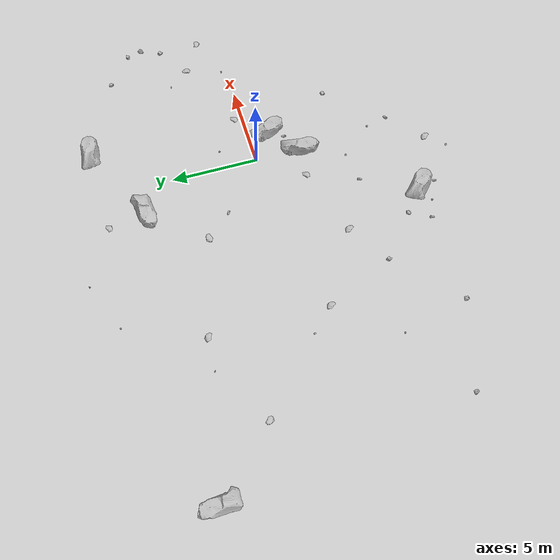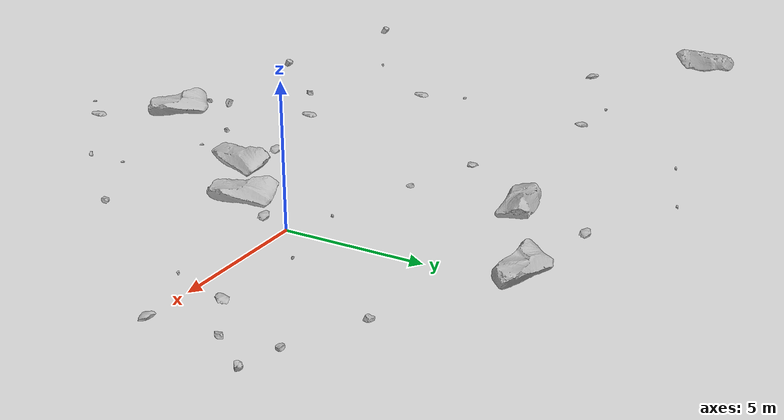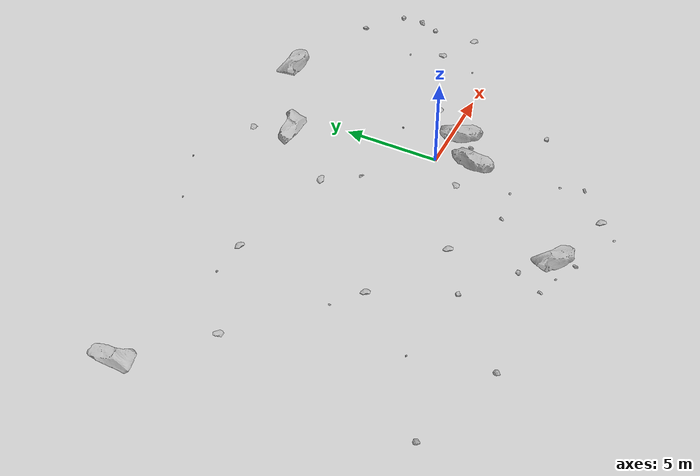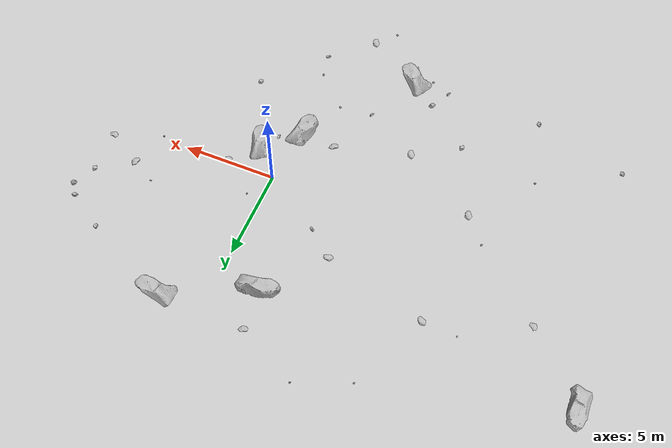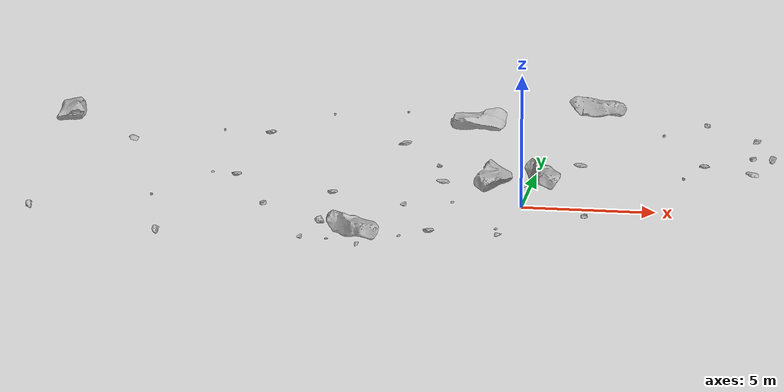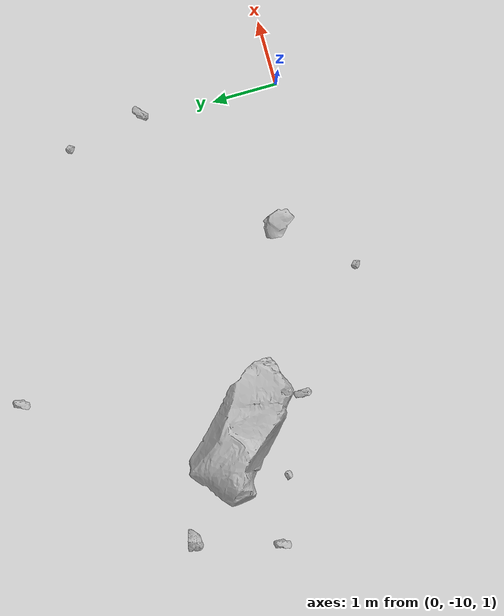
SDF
<sdf version="1.7">
 <world name="marsyard">
  <gravity>0 0 -9.81</gravity>
  <physics name="dart_physics" type="ignored">
   <max_step_size>0.003</max_step_size>
   <real_time_update_rate>333</real_time_update_rate>
   <real_time_factor>1.0</real_time_factor>
  </physics>
  <plugin filename="ignition-gazebo-physics-system" name="ignition::gazebo::systems::Physics"/>
  <plugin filename="ignition-gazebo-user-commands-system" name="ignition::gazebo::systems::UserCommands"/>
  <plugin filename="ignition-gazebo-scene-broadcaster-system" name="ignition::gazebo::systems::SceneBroadcaster"/>
  <plugin filename="ignition-gazebo-contact-system" name="ignition::gazebo::systems::Contact"/>
  <scene>
   <ambient>0.95 0.95 0.95 1</ambient>
   <background>0.70 0.70 0.70 1</background>
   <shadows>false</shadows>
  </scene>
  <light type="directional" name="sun">
   <cast_shadows>false</cast_shadows>
   <pose>0 0 30 0 0 0</pose>
   <diffuse>1 1 1 1</diffuse>
   <specular>0.15 0.15 0.15 1</specular>
   <direction>-0.35 0.1 -0.93</direction>
  </light>
  <model name="Rock_2">
   <static>true</static>
   <pose>-18.9268 7.1494 1.1350 0.0000 0.0000 -1.3252</pose>
   <link name="link">
    <visual name="visual">
     <geometry><mesh><uri>package://rock_generator/rocks_ws/rock_4/meshes/rock_4.stl</uri></mesh></geometry>
    </visual>
    <collision name="collision">
     <geometry><mesh><uri>package://rock_generator/rocks_ws/rock_4/meshes/rock_4.stl</uri></mesh></geometry>
    </collision>
   </link>
  </model>
  <model name="Rock_6">
   <static>true</static>
   <pose>-5.9052 10.8476 0.8921 0.0000 0.0000 -2.7646</pose>
   <link name="link">
    <visual name="visual">
     <geometry><mesh><uri>package://rock_generator/rocks_ws/rock_9/meshes/rock_9.stl</uri></mesh></geometry>
    </visual>
    <collision name="collision">
     <geometry><mesh><uri>package://rock_generator/rocks_ws/rock_9/meshes/rock_9.stl</uri></mesh></geometry>
    </collision>
   </link>
  </model>
  <model name="Rock_7">
   <static>true</static>
   <pose>-12.4129 5.6601 1.1659 0.0000 0.0000 -1.1469</pose>
   <link name="link">
    <visual name="visual">
     <geometry><mesh><uri>package://rock_generator/rocks_ws/rock_9/meshes/rock_9.stl</uri></mesh></geometry>
    </visual>
   </link>
  </model>
  <model name="Rock_8">
   <static>true</static>
   <pose>-16.9614 -6.5386 1.1565 0.0000 0.0000 1.6311</pose>
   <link name="link">
    <visual name="visual">
     <geometry><mesh><uri>package://rock_generator/rocks_ws/rock_3/meshes/rock_3.stl</uri></mesh></geometry>
    </visual>
    <collision name="collision">
     <geometry><mesh><uri>package://rock_generator/rocks_ws/rock_3/meshes/rock_3.stl</uri></mesh></geometry>
    </collision>
   </link>
  </model>
  <model name="Rock_10">
   <static>true</static>
   <pose>-2.9843 -10.3649 1.6301 0.0000 0.0000 -0.6016</pose>
   <link name="link">
    <visual name="visual">
     <geometry><mesh><uri>package://rock_generator/rocks_ws/rock_5/meshes/rock_5.stl</uri></mesh></geometry>
    </visual>
   </link>
  </model>
  <model name="Rock_14">
   <static>true</static>
   <pose>-0.1068 -6.6972 0.9884 0.0000 0.0000 -0.8057</pose>
   <link name="link">
    <visual name="visual">
     <geometry><mesh><uri>package://rock_generator/rocks_ws/rock_5/meshes/rock_5.stl</uri></mesh></geometry>
    </visual>
    <collision name="collision">
     <geometry><mesh><uri>package://rock_generator/rocks_ws/rock_5/meshes/rock_5.stl</uri></mesh></geometry>
    </collision>
   </link>
  </model>
  <model name="Rock_15">
   <static>true</static>
   <pose>2.8287 -4.9170 1.0206 0.0000 0.0000 2.4242</pose>
   <link name="link">
    <visual name="visual">
     <geometry><mesh><uri>package://rock_generator/rocks_ws/rock_1/meshes/rock_1.stl</uri></mesh></geometry>
    </visual>
    <collision name="collision">
     <geometry><mesh><uri>package://rock_generator/rocks_ws/rock_1/meshes/rock_1.stl</uri></mesh></geometry>
    </collision>
   </link>
  </model>
  <model name="Rock_16">
   <static>true</static>
   <pose>-10.5290 5.5359 1.1741 0.0000 0.0000 2.4212</pose>
   <link name="link">
    <visual name="visual">
     <geometry><mesh><uri>package://rock_generator/rocks_ws/rock_8/meshes/rock_8.stl</uri></mesh></geometry>
    </visual>
    <collision name="collision">
     <geometry><mesh><uri>package://rock_generator/rocks_ws/rock_8/meshes/rock_8.stl</uri></mesh></geometry>
    </collision>
   </link>
  </model>
  <model name="Rock_18">
   <static>true</static>
   <pose>-4.9091 -8.1522 0.9883 0.0000 0.0000 2.5511</pose>
   <link name="link">
    <visual name="visual">
     <geometry><mesh><uri>package://rock_generator/rocks_ws/rock_4/meshes/rock_4.stl</uri></mesh></geometry>
    </visual>
    <collision name="collision">
     <geometry><mesh><uri>package://rock_generator/rocks_ws/rock_4/meshes/rock_4.stl</uri></mesh></geometry>
    </collision>
   </link>
  </model>
  <model name="Rock_21">
   <static>true</static>
   <pose>6.4061 7.0703 1.6099 0.0000 0.0000 0.4842</pose>
   <link name="link">
    <visual name="visual">
     <geometry><mesh><uri>package://rock_generator/rocks_ws/rock_1/meshes/rock_1.stl</uri></mesh></geometry>
    </visual>
    <collision name="collision">
     <geometry><mesh><uri>package://rock_generator/rocks_ws/rock_1/meshes/rock_1.stl</uri></mesh></geometry>
    </collision>
   </link>
  </model>
  <model name="Rock_22">
   <static>true</static>
   <pose>5.9748 0.5080 1.1949 0.0000 0.0000 3.0163</pose>
   <link name="link">
    <visual name="visual">
     <geometry><mesh><uri>package://rock_generator/rocks_ws/rock_9/meshes/rock_9.stl</uri></mesh></geometry>
    </visual>
    <collision name="collision">
     <geometry><mesh><uri>package://rock_generator/rocks_ws/rock_9/meshes/rock_9.stl</uri></mesh></geometry>
    </collision>
   </link>
  </model>
  <model name="Rock_24">
   <static>true</static>
   <pose>-6.4909 -3.4187 1.2377 0.0000 0.0000 1.8881</pose>
   <link name="link">
    <visual name="visual">
     <geometry><mesh><uri>package://rock_generator/rocks_ws/rock_8/meshes/rock_8.stl</uri></mesh></geometry>
    </visual>
    <collision name="collision">
     <geometry><mesh><uri>package://rock_generator/rocks_ws/rock_8/meshes/rock_8.stl</uri></mesh></geometry>
    </collision>
   </link>
  </model>
  <model name="Rock_26">
   <static>true</static>
   <pose>-0.8308 -2.3494 1.4167 0.0000 0.0000 1.5150</pose>
   <link name="link">
    <visual name="visual">
     <geometry><mesh><uri>package://rock_generator/rocks_ws/rock_4/meshes/rock_4.stl</uri></mesh></geometry>
    </visual>
   </link>
  </model>
  <model name="Rock_28">
   <static>true</static>
   <pose>8.4526 1.4057 1.2255 0.0000 0.0000 -0.5268</pose>
   <link name="link">
    <visual name="visual">
     <geometry><mesh><uri>package://rock_generator/rocks_ws/rock_8/meshes/rock_8.stl</uri></mesh></geometry>
    </visual>
    <collision name="collision">
     <geometry><mesh><uri>package://rock_generator/rocks_ws/rock_8/meshes/rock_8.stl</uri></mesh></geometry>
    </collision>
   </link>
  </model>
  <model name="Rock_29">
   <static>true</static>
   <pose>-2.6545 9.1275 0.9091 0.0000 0.0000 0.1100</pose>
   <link name="link">
    <visual name="visual">
     <geometry><mesh><uri>package://rock_generator/rocks_ws/rock_8/meshes/rock_8.stl</uri></mesh></geometry>
    </visual>
    <collision name="collision">
     <geometry><mesh><uri>package://rock_generator/rocks_ws/rock_8/meshes/rock_8.stl</uri></mesh></geometry>
    </collision>
   </link>
  </model>
  <model name="Rock_30">
   <static>true</static>
   <pose>-2.6200 -2.1851 1.4604 0.0000 0.0000 0.3235</pose>
   <link name="link">
    <visual name="visual">
     <geometry><mesh><uri>package://rock_generator/rocks_ws/rock_8/meshes/rock_8.stl</uri></mesh></geometry>
    </visual>
   </link>
  </model>
  <model name="Rock_31">
   <static>true</static>
   <pose>4.9928 3.7439 2.0138 0.0000 0.0000 -0.1087</pose>
   <link name="link">
    <visual name="visual">
     <geometry><mesh><uri>package://rock_generator/rocks_ws/rock_9/meshes/rock_9.stl</uri></mesh></geometry>
    </visual>
    <collision name="collision">
     <geometry><mesh><uri>package://rock_generator/rocks_ws/rock_9/meshes/rock_9.stl</uri></mesh></geometry>
    </collision>
   </link>
  </model>
  <model name="Rock_32">
   <static>true</static>
   <pose>2.1348 0.7183 1.5086 0.0000 0.0000 0.2609</pose>
   <link name="link">
    <visual name="visual">
     <geometry><mesh><uri>package://rock_generator/rocks_ws/rock_8/meshes/rock_8.stl</uri></mesh></geometry>
    </visual>
    <collision name="collision">
     <geometry><mesh><uri>package://rock_generator/rocks_ws/rock_8/meshes/rock_8.stl</uri></mesh></geometry>
    </collision>
   </link>
  </model>
  <model name="Rock_33">
   <static>true</static>
   <pose>-10.5433 -1.0605 1.1626 0.0000 0.0000 1.8432</pose>
   <link name="link">
    <visual name="visual">
     <geometry><mesh><uri>package://rock_generator/rocks_ws/rock_8/meshes/rock_8.stl</uri></mesh></geometry>
    </visual>
    <collision name="collision">
     <geometry><mesh><uri>package://rock_generator/rocks_ws/rock_8/meshes/rock_8.stl</uri></mesh></geometry>
    </collision>
   </link>
  </model>
  <model name="Rock_34">
   <static>true</static>
   <pose>-6.8468 -8.1940 0.8419 0.0000 0.0000 -2.0094</pose>
   <link name="link">
    <visual name="visual">
     <geometry><mesh><uri>package://rock_generator/rocks_ws/rock_6/meshes/rock_6.stl</uri></mesh></geometry>
    </visual>
    <collision name="collision">
     <geometry><mesh><uri>package://rock_generator/rocks_ws/rock_6/meshes/rock_6.stl</uri></mesh></geometry>
    </collision>
   </link>
  </model>
  <model name="Rock_35">
   <static>true</static>
   <pose>9.1199 4.7473 0.9514 0.0000 0.0000 0.7313</pose>
   <link name="link">
    <visual name="visual">
     <geometry><mesh><uri>package://rock_generator/rocks_ws/rock_3/meshes/rock_3.stl</uri></mesh></geometry>
    </visual>
   </link>
  </model>
  <model name="Rock_36">
   <static>true</static>
   <pose>-15.6369 3.7108 1.1951 0.0000 0.0000 -1.0379</pose>
   <link name="link">
    <visual name="visual">
     <geometry><mesh><uri>package://rock_generator/rocks_ws/rock_8/meshes/rock_8.stl</uri></mesh></geometry>
    </visual>
   </link>
  </model>
  <model name="Rock_37">
   <static>true</static>
   <pose>-3.4340 2.5715 0.8082 0.0000 0.0000 -0.7317</pose>
   <link name="link">
    <visual name="visual">
     <geometry><mesh><uri>package://rock_generator/rocks_ws/rock_6/meshes/rock_6.stl</uri></mesh></geometry>
    </visual>
    <collision name="collision">
     <geometry><mesh><uri>package://rock_generator/rocks_ws/rock_6/meshes/rock_6.stl</uri></mesh></geometry>
    </collision>
   </link>
  </model>
  <model name="Rock_39">
   <static>true</static>
   <pose>-2.0837 -9.4140 1.5973 0.0000 0.0000 1.9819</pose>
   <link name="link">
    <visual name="visual">
     <geometry><mesh><uri>package://rock_generator/rocks_ws/rock_8/meshes/rock_8.stl</uri></mesh></geometry>
    </visual>
    <collision name="collision">
     <geometry><mesh><uri>package://rock_generator/rocks_ws/rock_8/meshes/rock_8.stl</uri></mesh></geometry>
    </collision>
   </link>
  </model>
  <model name="Rock_40">
   <static>true</static>
   <pose>-13.0690 -4.2695 1.1114 0.0000 0.0000 2.8500</pose>
   <link name="link">
    <visual name="visual">
     <geometry><mesh><uri>package://rock_generator/rocks_ws/rock_9/meshes/rock_9.stl</uri></mesh></geometry>
    </visual>
    <collision name="collision">
     <geometry><mesh><uri>package://rock_generator/rocks_ws/rock_9/meshes/rock_9.stl</uri></mesh></geometry>
    </collision>
   </link>
  </model>
  <model name="Rock_41">
   <static>true</static>
   <pose>-11.9515 -8.1522 0.8555 0.0000 0.0000 1.3207</pose>
   <link name="link">
    <visual name="visual">
     <geometry><mesh><uri>package://rock_generator/rocks_ws/rock_3/meshes/rock_3.stl</uri></mesh></geometry>
    </visual>
   </link>
  </model>
  <model name="Rock_42">
   <static>true</static>
   <pose>-6.3500 -6.8321 1.1011 0.0000 0.0000 2.9224</pose>
   <link name="link">
    <visual name="visual">
     <geometry><mesh><uri>package://rock_generator/rocks_ws/rock_3/meshes/rock_3.stl</uri></mesh></geometry>
    </visual>
   </link>
  </model>
  <model name="Rock_43">
   <static>true</static>
   <pose>-8.7350 9.7451 0.9631 0.0000 0.0000 -2.7248</pose>
   <link name="link">
    <visual name="visual">
     <geometry><mesh><uri>package://rock_generator/rocks_ws/rock_9/meshes/rock_9.stl</uri></mesh></geometry>
    </visual>
    <collision name="collision">
     <geometry><mesh><uri>package://rock_generator/rocks_ws/rock_9/meshes/rock_9.stl</uri></mesh></geometry>
    </collision>
   </link>
  </model>
  <model name="Rock_44">
   <static>true</static>
   <pose>-11.7279 0.1668 0.8813 0.0000 0.0000 1.6180</pose>
   <link name="link">
    <visual name="visual">
     <geometry><mesh><uri>package://rock_generator/rocks_ws/rock_5/meshes/rock_5.stl</uri></mesh></geometry>
    </visual>
   </link>
  </model>
  <model name="Rock_45">
   <static>true</static>
   <pose>-3.6517 -4.9912 1.2962 0.0000 0.0000 -2.1713</pose>
   <link name="link">
    <visual name="visual">
     <geometry><mesh><uri>package://rock_generator/rocks_ws/rock_6/meshes/rock_6.stl</uri></mesh></geometry>
    </visual>
    <collision name="collision">
     <geometry><mesh><uri>package://rock_generator/rocks_ws/rock_6/meshes/rock_6.stl</uri></mesh></geometry>
    </collision>
   </link>
  </model>
  <model name="Rock_46">
   <static>true</static>
   <pose>1.9701 9.1772 1.4554 0.0000 0.0000 -3.1264</pose>
   <link name="link">
    <visual name="visual">
     <geometry><mesh><uri>package://rock_generator/rocks_ws/rock_4/meshes/rock_4.stl</uri></mesh></geometry>
    </visual>
    <collision name="collision">
     <geometry><mesh><uri>package://rock_generator/rocks_ws/rock_4/meshes/rock_4.stl</uri></mesh></geometry>
    </collision>
   </link>
  </model>
  <model name="Rock_47">
   <static>true</static>
   <pose>0.1088 -7.8812 1.1133 0.0000 0.0000 0.5768</pose>
   <link name="link">
    <visual name="visual">
     <geometry><mesh><uri>package://rock_generator/rocks_ws/rock_6/meshes/rock_6.stl</uri></mesh></geometry>
    </visual>
   </link>
  </model>
  <model name="Rock_48">
   <static>true</static>
   <pose>-4.9864 4.0642 1.2949 0.0000 0.0000 -3.0936</pose>
   <link name="link">
    <visual name="visual">
     <geometry><mesh><uri>package://rock_generator/rocks_ws/rock_8/meshes/rock_8.stl</uri></mesh></geometry>
    </visual>
    <collision name="collision">
     <geometry><mesh><uri>package://rock_generator/rocks_ws/rock_8/meshes/rock_8.stl</uri></mesh></geometry>
    </collision>
   </link>
  </model>
  <model name="Rock_49">
   <static>true</static>
   <pose>-5.8311 -8.5719 0.9167 0.0000 0.0000 -2.9988</pose>
   <link name="link">
    <visual name="visual">
     <geometry><mesh><uri>package://rock_generator/rocks_ws/rock_5/meshes/rock_5.stl</uri></mesh></geometry>
    </visual>
    <collision name="collision">
     <geometry><mesh><uri>package://rock_generator/rocks_ws/rock_5/meshes/rock_5.stl</uri></mesh></geometry>
    </collision>
   </link>
  </model>
  <model name="Rock_50">
   <static>true</static>
   <pose>-8.7872 -4.9409 1.0526 0.0000 0.0000 2.9189</pose>
   <link name="link">
    <visual name="visual">
     <geometry><mesh><uri>package://rock_generator/rocks_ws/rock_1/meshes/rock_1.stl</uri></mesh></geometry>
    </visual>
    <collision name="collision">
     <geometry><mesh><uri>package://rock_generator/rocks_ws/rock_1/meshes/rock_1.stl</uri></mesh></geometry>
    </collision>
   </link>
  </model>
  <model name="Rock_51">
   <static>true</static>
   <pose>0.4351 2.0565 1.1229 0.0000 0.0000 -2.2091</pose>
   <link name="link">
    <visual name="visual">
     <geometry><mesh><uri>package://rock_generator/rocks_ws/rock_9/meshes/rock_9.stl</uri></mesh></geometry>
    </visual>
   </link>
  </model>
  <model name="Rock_52">
   <static>true</static>
   <pose>-2.5264 7.0108 1.2567 0.0000 0.0000 0.2683</pose>
   <link name="link">
    <visual name="visual">
     <geometry><mesh><uri>package://rock_generator/rocks_ws/rock_4/meshes/rock_4.stl</uri></mesh></geometry>
    </visual>
    <collision name="collision">
     <geometry><mesh><uri>package://rock_generator/rocks_ws/rock_4/meshes/rock_4.stl</uri></mesh></geometry>
    </collision>
   </link>
  </model>
  <model name="Rock_53">
   <static>true</static>
   <pose>6.6397 2.5131 1.1981 0.0000 0.0000 1.0244</pose>
   <link name="link">
    <visual name="visual">
     <geometry><mesh><uri>package://rock_generator/rocks_ws/rock_8/meshes/rock_8.stl</uri></mesh></geometry>
    </visual>
   </link>
  </model>
  <model name="Rock_54">
   <static>true</static>
   <pose>0.9683 -0.9292 1.2035 0.0000 0.0000 2.0535</pose>
   <link name="link">
    <visual name="visual">
     <geometry><mesh><uri>package://rock_generator/rocks_ws/rock_4/meshes/rock_4.stl</uri></mesh></geometry>
    </visual>
   </link>
  </model>
  <model name="Rock_56">
   <static>true</static>
   <pose>0.3264 -1.7500 1.3189 0.0000 0.0000 1.4722</pose>
   <link name="link">
    <visual name="visual">
     <geometry><mesh><uri>package://rock_generator/rocks_ws/rock_6/meshes/rock_6.stl</uri></mesh></geometry>
    </visual>
    <collision name="collision">
     <geometry><mesh><uri>package://rock_generator/rocks_ws/rock_6/meshes/rock_6.stl</uri></mesh></geometry>
    </collision>
   </link>
  </model>
  <model name="Rock_58">
   <static>true</static>
   <pose>-4.6776 -9.1252 0.9339 0.0000 0.0000 1.3576</pose>
   <link name="link">
    <visual name="visual">
     <geometry><mesh><uri>package://rock_generator/rocks_ws/rock_6/meshes/rock_6.stl</uri></mesh></geometry>
    </visual>
    <collision name="collision">
     <geometry><mesh><uri>package://rock_generator/rocks_ws/rock_6/meshes/rock_6.stl</uri></mesh></geometry>
    </collision>
   </link>
  </model>
  <model name="Rock_59">
   <static>true</static>
   <pose>-1.9260 -4.7441 1.3732 0.0000 0.0000 -0.3274</pose>
   <link name="link">
    <visual name="visual">
     <geometry><mesh><uri>package://rock_generator/rocks_ws/rock_5/meshes/rock_5.stl</uri></mesh></geometry>
    </visual>
   </link>
  </model>
  <model name="Rock_60">
   <static>true</static>
   <pose>8.4348 5.7057 1.3714 0.0000 0.0000 -1.1327</pose>
   <link name="link">
    <visual name="visual">
     <geometry><mesh><uri>package://rock_generator/rocks_ws/rock_1/meshes/rock_1.stl</uri></mesh></geometry>
    </visual>
    <collision name="collision">
     <geometry><mesh><uri>package://rock_generator/rocks_ws/rock_1/meshes/rock_1.stl</uri></mesh></geometry>
    </collision>
   </link>
  </model>
  <model name="Rock_61">
   <static>true</static>
   <pose>8.3824 3.7097 1.1675 0.0000 0.0000 2.9013</pose>
   <link name="link">
    <visual name="visual">
     <geometry><mesh><uri>package://rock_generator/rocks_ws/rock_1/meshes/rock_1.stl</uri></mesh></geometry>
    </visual>
   </link>
  </model>
 </world>
</sdf>
